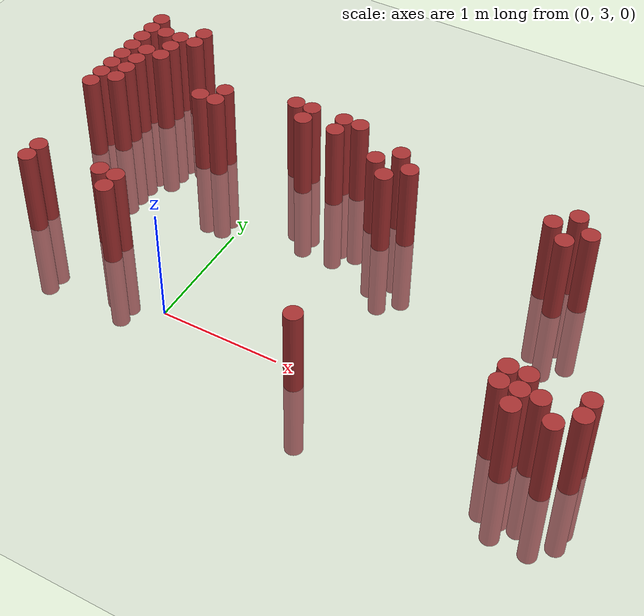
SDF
<sdf version="1.6">
 <world name="default">
  <model name="ground_plane">
   <static>1</static>
   <link name="link">
    <collision name="collision">
     <geometry><plane><normal>0 0 1</normal><size>100 100</size></plane></geometry>
     <surface><friction><ode><mu>100</mu><mu2>50</mu2></ode></friction></surface>
    </collision>
    <visual name="visual">
     <cast_shadows>0</cast_shadows>
     <geometry><plane><normal>0 0 1</normal><size>100 100</size></plane></geometry>
     <material>
      <script><uri>file://media/materials/scripts/gazebo.material</uri><name>Gazebo/Grey</name></script>
     </material>
    </visual>
   </link>
  </model>
  <model name="unit_cylinder_329">
   <static>1</static>
   <pose>-1.625000 4.375000 0.000000 0.000000 0.000000 0.000000</pose>
   <link name="link">
    <inertial>
     <mass>1</mass>
     <inertia><ixx>0.145833</ixx><ixy>0</ixy><ixz>0</ixz><iyy>0.145833</iyy><iyz>0</iyz><izz>0.125</izz></inertia>
    </inertial>
    <collision name="collision">
     <geometry><cylinder><radius>0.075000</radius><length>1.5</length></cylinder></geometry>
    </collision>
    <visual name="visual">
     <geometry><cylinder><radius>0.075000</radius><length>1.5</length></cylinder></geometry>
     <material>
      <ambient>0.648000 0.192000 0.192000 1</ambient>
      <diffuse>0.648000 0.192000 0.192000 1</diffuse>
     </material>
     <material>
      <script><name>Gazebo/Grey</name><uri>file://media/materials/scripts/gazebo.material</uri></script>
     </material>
    </visual>
   </link>
  </model>
  <model name="unit_cylinder_330">
   <static>1</static>
   <pose>-1.625000 4.525000 0.000000 0.000000 0.000000 0.000000</pose>
   <link name="link">
    <inertial>
     <mass>1</mass>
     <inertia><ixx>0.145833</ixx><ixy>0</ixy><ixz>0</ixz><iyy>0.145833</iyy><iyz>0</iyz><izz>0.125</izz></inertia>
    </inertial>
    <collision name="collision">
     <geometry><cylinder><radius>0.075000</radius><length>1.5</length></cylinder></geometry>
    </collision>
    <visual name="visual">
     <geometry><cylinder><radius>0.075000</radius><length>1.5</length></cylinder></geometry>
     <material>
      <ambient>0.648000 0.192000 0.192000 1</ambient>
      <diffuse>0.648000 0.192000 0.192000 1</diffuse>
     </material>
     <material>
      <script><name>Gazebo/Grey</name><uri>file://media/materials/scripts/gazebo.material</uri></script>
     </material>
    </visual>
   </link>
  </model>
  <model name="unit_cylinder_331">
   <static>1</static>
   <pose>-1.625000 4.675000 0.000000 0.000000 0.000000 0.000000</pose>
   <link name="link">
    <inertial>
     <mass>1</mass>
     <inertia><ixx>0.145833</ixx><ixy>0</ixy><ixz>0</ixz><iyy>0.145833</iyy><iyz>0</iyz><izz>0.125</izz></inertia>
    </inertial>
    <collision name="collision">
     <geometry><cylinder><radius>0.075000</radius><length>1.5</length></cylinder></geometry>
    </collision>
    <visual name="visual">
     <geometry><cylinder><radius>0.075000</radius><length>1.5</length></cylinder></geometry>
     <material>
      <ambient>0.648000 0.192000 0.192000 1</ambient>
      <diffuse>0.648000 0.192000 0.192000 1</diffuse>
     </material>
     <material>
      <script><name>Gazebo/Grey</name><uri>file://media/materials/scripts/gazebo.material</uri></script>
     </material>
    </visual>
   </link>
  </model>
  <model name="unit_cylinder_332">
   <static>1</static>
   <pose>-1.625000 4.825000 0.000000 0.000000 0.000000 0.000000</pose>
   <link name="link">
    <inertial>
     <mass>1</mass>
     <inertia><ixx>0.145833</ixx><ixy>0</ixy><ixz>0</ixz><iyy>0.145833</iyy><iyz>0</iyz><izz>0.125</izz></inertia>
    </inertial>
    <collision name="collision">
     <geometry><cylinder><radius>0.075000</radius><length>1.5</length></cylinder></geometry>
    </collision>
    <visual name="visual">
     <geometry><cylinder><radius>0.075000</radius><length>1.5</length></cylinder></geometry>
     <material>
      <ambient>0.648000 0.192000 0.192000 1</ambient>
      <diffuse>0.648000 0.192000 0.192000 1</diffuse>
     </material>
     <material>
      <script><name>Gazebo/Grey</name><uri>file://media/materials/scripts/gazebo.material</uri></script>
     </material>
    </visual>
   </link>
  </model>
  <model name="unit_cylinder_333">
   <static>1</static>
   <pose>-1.625000 4.975000 0.000000 0.000000 0.000000 0.000000</pose>
   <link name="link">
    <inertial>
     <mass>1</mass>
     <inertia><ixx>0.145833</ixx><ixy>0</ixy><ixz>0</ixz><iyy>0.145833</iyy><iyz>0</iyz><izz>0.125</izz></inertia>
    </inertial>
    <collision name="collision">
     <geometry><cylinder><radius>0.075000</radius><length>1.5</length></cylinder></geometry>
    </collision>
    <visual name="visual">
     <geometry><cylinder><radius>0.075000</radius><length>1.5</length></cylinder></geometry>
     <material>
      <ambient>0.648000 0.192000 0.192000 1</ambient>
      <diffuse>0.648000 0.192000 0.192000 1</diffuse>
     </material>
     <material>
      <script><name>Gazebo/Grey</name><uri>file://media/materials/scripts/gazebo.material</uri></script>
     </material>
    </visual>
   </link>
  </model>
  <model name="unit_cylinder_334">
   <static>1</static>
   <pose>-1.625000 5.125000 0.000000 0.000000 0.000000 0.000000</pose>
   <link name="link">
    <inertial>
     <mass>1</mass>
     <inertia><ixx>0.145833</ixx><ixy>0</ixy><ixz>0</ixz><iyy>0.145833</iyy><iyz>0</iyz><izz>0.125</izz></inertia>
    </inertial>
    <collision name="collision">
     <geometry><cylinder><radius>0.075000</radius><length>1.5</length></cylinder></geometry>
    </collision>
    <visual name="visual">
     <geometry><cylinder><radius>0.075000</radius><length>1.5</length></cylinder></geometry>
     <material>
      <ambient>0.648000 0.192000 0.192000 1</ambient>
      <diffuse>0.648000 0.192000 0.192000 1</diffuse>
     </material>
     <material>
      <script><name>Gazebo/Grey</name><uri>file://media/materials/scripts/gazebo.material</uri></script>
     </material>
    </visual>
   </link>
  </model>
  <model name="unit_cylinder_335">
   <static>1</static>
   <pose>-1.625000 5.275000 0.000000 0.000000 0.000000 0.000000</pose>
   <link name="link">
    <inertial>
     <mass>1</mass>
     <inertia><ixx>0.145833</ixx><ixy>0</ixy><ixz>0</ixz><iyy>0.145833</iyy><iyz>0</iyz><izz>0.125</izz></inertia>
    </inertial>
    <collision name="collision">
     <geometry><cylinder><radius>0.075000</radius><length>1.5</length></cylinder></geometry>
    </collision>
    <visual name="visual">
     <geometry><cylinder><radius>0.075000</radius><length>1.5</length></cylinder></geometry>
     <material>
      <ambient>0.648000 0.192000 0.192000 1</ambient>
      <diffuse>0.648000 0.192000 0.192000 1</diffuse>
     </material>
     <material>
      <script><name>Gazebo/Grey</name><uri>file://media/materials/scripts/gazebo.material</uri></script>
     </material>
    </visual>
   </link>
  </model>
  <model name="unit_cylinder_336">
   <static>1</static>
   <pose>-1.625000 5.425000 0.000000 0.000000 0.000000 0.000000</pose>
   <link name="link">
    <inertial>
     <mass>1</mass>
     <inertia><ixx>0.145833</ixx><ixy>0</ixy><ixz>0</ixz><iyy>0.145833</iyy><iyz>0</iyz><izz>0.125</izz></inertia>
    </inertial>
    <collision name="collision">
     <geometry><cylinder><radius>0.075000</radius><length>1.5</length></cylinder></geometry>
    </collision>
    <visual name="visual">
     <geometry><cylinder><radius>0.075000</radius><length>1.5</length></cylinder></geometry>
     <material>
      <ambient>0.648000 0.192000 0.192000 1</ambient>
      <diffuse>0.648000 0.192000 0.192000 1</diffuse>
     </material>
     <material>
      <script><name>Gazebo/Grey</name><uri>file://media/materials/scripts/gazebo.material</uri></script>
     </material>
    </visual>
   </link>
  </model>
  <model name="unit_cylinder_341">
   <static>1</static>
   <pose>-1.475000 3.325000 0.000000 0.000000 0.000000 0.000000</pose>
   <link name="link">
    <inertial>
     <mass>1</mass>
     <inertia><ixx>0.145833</ixx><ixy>0</ixy><ixz>0</ixz><iyy>0.145833</iyy><iyz>0</iyz><izz>0.125</izz></inertia>
    </inertial>
    <collision name="collision">
     <geometry><cylinder><radius>0.075000</radius><length>1.5</length></cylinder></geometry>
    </collision>
    <visual name="visual">
     <geometry><cylinder><radius>0.075000</radius><length>1.5</length></cylinder></geometry>
     <material>
      <ambient>0.648000 0.192000 0.192000 1</ambient>
      <diffuse>0.648000 0.192000 0.192000 1</diffuse>
     </material>
     <material>
      <script><name>Gazebo/Grey</name><uri>file://media/materials/scripts/gazebo.material</uri></script>
     </material>
    </visual>
   </link>
  </model>
  <model name="unit_cylinder_342">
   <static>1</static>
   <pose>-1.475000 3.475000 0.000000 0.000000 0.000000 0.000000</pose>
   <link name="link">
    <inertial>
     <mass>1</mass>
     <inertia><ixx>0.145833</ixx><ixy>0</ixy><ixz>0</ixz><iyy>0.145833</iyy><iyz>0</iyz><izz>0.125</izz></inertia>
    </inertial>
    <collision name="collision">
     <geometry><cylinder><radius>0.075000</radius><length>1.5</length></cylinder></geometry>
    </collision>
    <visual name="visual">
     <geometry><cylinder><radius>0.075000</radius><length>1.5</length></cylinder></geometry>
     <material>
      <ambient>0.648000 0.192000 0.192000 1</ambient>
      <diffuse>0.648000 0.192000 0.192000 1</diffuse>
     </material>
     <material>
      <script><name>Gazebo/Grey</name><uri>file://media/materials/scripts/gazebo.material</uri></script>
     </material>
    </visual>
   </link>
  </model>
  <model name="unit_cylinder_343">
   <static>1</static>
   <pose>-1.475000 4.525000 0.000000 0.000000 0.000000 0.000000</pose>
   <link name="link">
    <inertial>
     <mass>1</mass>
     <inertia><ixx>0.145833</ixx><ixy>0</ixy><ixz>0</ixz><iyy>0.145833</iyy><iyz>0</iyz><izz>0.125</izz></inertia>
    </inertial>
    <collision name="collision">
     <geometry><cylinder><radius>0.075000</radius><length>1.5</length></cylinder></geometry>
    </collision>
    <visual name="visual">
     <geometry><cylinder><radius>0.075000</radius><length>1.5</length></cylinder></geometry>
     <material>
      <ambient>0.648000 0.192000 0.192000 1</ambient>
      <diffuse>0.648000 0.192000 0.192000 1</diffuse>
     </material>
     <material>
      <script><name>Gazebo/Grey</name><uri>file://media/materials/scripts/gazebo.material</uri></script>
     </material>
    </visual>
   </link>
  </model>
  <model name="unit_cylinder_344">
   <static>1</static>
   <pose>-1.475000 4.675000 0.000000 0.000000 0.000000 0.000000</pose>
   <link name="link">
    <inertial>
     <mass>1</mass>
     <inertia><ixx>0.145833</ixx><ixy>0</ixy><ixz>0</ixz><iyy>0.145833</iyy><iyz>0</iyz><izz>0.125</izz></inertia>
    </inertial>
    <collision name="collision">
     <geometry><cylinder><radius>0.075000</radius><length>1.5</length></cylinder></geometry>
    </collision>
    <visual name="visual">
     <geometry><cylinder><radius>0.075000</radius><length>1.5</length></cylinder></geometry>
     <material>
      <ambient>0.648000 0.192000 0.192000 1</ambient>
      <diffuse>0.648000 0.192000 0.192000 1</diffuse>
     </material>
     <material>
      <script><name>Gazebo/Grey</name><uri>file://media/materials/scripts/gazebo.material</uri></script>
     </material>
    </visual>
   </link>
  </model>
  <model name="unit_cylinder_345">
   <static>1</static>
   <pose>-1.475000 4.825000 0.000000 0.000000 0.000000 0.000000</pose>
   <link name="link">
    <inertial>
     <mass>1</mass>
     <inertia><ixx>0.145833</ixx><ixy>0</ixy><ixz>0</ixz><iyy>0.145833</iyy><iyz>0</iyz><izz>0.125</izz></inertia>
    </inertial>
    <collision name="collision">
     <geometry><cylinder><radius>0.075000</radius><length>1.5</length></cylinder></geometry>
    </collision>
    <visual name="visual">
     <geometry><cylinder><radius>0.075000</radius><length>1.5</length></cylinder></geometry>
     <material>
      <ambient>0.648000 0.192000 0.192000 1</ambient>
      <diffuse>0.648000 0.192000 0.192000 1</diffuse>
     </material>
     <material>
      <script><name>Gazebo/Grey</name><uri>file://media/materials/scripts/gazebo.material</uri></script>
     </material>
    </visual>
   </link>
  </model>
  <model name="unit_cylinder_346">
   <static>1</static>
   <pose>-1.475000 4.975000 0.000000 0.000000 0.000000 0.000000</pose>
   <link name="link">
    <inertial>
     <mass>1</mass>
     <inertia><ixx>0.145833</ixx><ixy>0</ixy><ixz>0</ixz><iyy>0.145833</iyy><iyz>0</iyz><izz>0.125</izz></inertia>
    </inertial>
    <collision name="collision">
     <geometry><cylinder><radius>0.075000</radius><length>1.5</length></cylinder></geometry>
    </collision>
    <visual name="visual">
     <geometry><cylinder><radius>0.075000</radius><length>1.5</length></cylinder></geometry>
     <material>
      <ambient>0.648000 0.192000 0.192000 1</ambient>
      <diffuse>0.648000 0.192000 0.192000 1</diffuse>
     </material>
     <material>
      <script><name>Gazebo/Grey</name><uri>file://media/materials/scripts/gazebo.material</uri></script>
     </material>
    </visual>
   </link>
  </model>
  <model name="unit_cylinder_347">
   <static>1</static>
   <pose>-1.475000 5.275000 0.000000 0.000000 0.000000 0.000000</pose>
   <link name="link">
    <inertial>
     <mass>1</mass>
     <inertia><ixx>0.145833</ixx><ixy>0</ixy><ixz>0</ixz><iyy>0.145833</iyy><iyz>0</iyz><izz>0.125</izz></inertia>
    </inertial>
    <collision name="collision">
     <geometry><cylinder><radius>0.075000</radius><length>1.5</length></cylinder></geometry>
    </collision>
    <visual name="visual">
     <geometry><cylinder><radius>0.075000</radius><length>1.5</length></cylinder></geometry>
     <material>
      <ambient>0.648000 0.192000 0.192000 1</ambient>
      <diffuse>0.648000 0.192000 0.192000 1</diffuse>
     </material>
     <material>
      <script><name>Gazebo/Grey</name><uri>file://media/materials/scripts/gazebo.material</uri></script>
     </material>
    </visual>
   </link>
  </model>
  <model name="unit_cylinder_350">
   <static>1</static>
   <pose>-1.325000 4.975000 0.000000 0.000000 0.000000 0.000000</pose>
   <link name="link">
    <inertial>
     <mass>1</mass>
     <inertia><ixx>0.145833</ixx><ixy>0</ixy><ixz>0</ixz><iyy>0.145833</iyy><iyz>0</iyz><izz>0.125</izz></inertia>
    </inertial>
    <collision name="collision">
     <geometry><cylinder><radius>0.075000</radius><length>1.5</length></cylinder></geometry>
    </collision>
    <visual name="visual">
     <geometry><cylinder><radius>0.075000</radius><length>1.5</length></cylinder></geometry>
     <material>
      <ambient>0.648000 0.192000 0.192000 1</ambient>
      <diffuse>0.648000 0.192000 0.192000 1</diffuse>
     </material>
     <material>
      <script><name>Gazebo/Grey</name><uri>file://media/materials/scripts/gazebo.material</uri></script>
     </material>
    </visual>
   </link>
  </model>
  <model name="unit_cylinder_351">
   <static>1</static>
   <pose>-1.325000 5.125000 0.000000 0.000000 0.000000 0.000000</pose>
   <link name="link">
    <inertial>
     <mass>1</mass>
     <inertia><ixx>0.145833</ixx><ixy>0</ixy><ixz>0</ixz><iyy>0.145833</iyy><iyz>0</iyz><izz>0.125</izz></inertia>
    </inertial>
    <collision name="collision">
     <geometry><cylinder><radius>0.075000</radius><length>1.5</length></cylinder></geometry>
    </collision>
    <visual name="visual">
     <geometry><cylinder><radius>0.075000</radius><length>1.5</length></cylinder></geometry>
     <material>
      <ambient>0.648000 0.192000 0.192000 1</ambient>
      <diffuse>0.648000 0.192000 0.192000 1</diffuse>
     </material>
     <material>
      <script><name>Gazebo/Grey</name><uri>file://media/materials/scripts/gazebo.material</uri></script>
     </material>
    </visual>
   </link>
  </model>
  <model name="unit_cylinder_352">
   <static>1</static>
   <pose>-1.325000 5.275000 0.000000 0.000000 0.000000 0.000000</pose>
   <link name="link">
    <inertial>
     <mass>1</mass>
     <inertia><ixx>0.145833</ixx><ixy>0</ixy><ixz>0</ixz><iyy>0.145833</iyy><iyz>0</iyz><izz>0.125</izz></inertia>
    </inertial>
    <collision name="collision">
     <geometry><cylinder><radius>0.075000</radius><length>1.5</length></cylinder></geometry>
    </collision>
    <visual name="visual">
     <geometry><cylinder><radius>0.075000</radius><length>1.5</length></cylinder></geometry>
     <material>
      <ambient>0.648000 0.192000 0.192000 1</ambient>
      <diffuse>0.648000 0.192000 0.192000 1</diffuse>
     </material>
     <material>
      <script><name>Gazebo/Grey</name><uri>file://media/materials/scripts/gazebo.material</uri></script>
     </material>
    </visual>
   </link>
  </model>
  <model name="unit_cylinder_355">
   <static>1</static>
   <pose>-1.175000 5.275000 0.000000 0.000000 0.000000 0.000000</pose>
   <link name="link">
    <inertial>
     <mass>1</mass>
     <inertia><ixx>0.145833</ixx><ixy>0</ixy><ixz>0</ixz><iyy>0.145833</iyy><iyz>0</iyz><izz>0.125</izz></inertia>
    </inertial>
    <collision name="collision">
     <geometry><cylinder><radius>0.075000</radius><length>1.5</length></cylinder></geometry>
    </collision>
    <visual name="visual">
     <geometry><cylinder><radius>0.075000</radius><length>1.5</length></cylinder></geometry>
     <material>
      <ambient>0.648000 0.192000 0.192000 1</ambient>
      <diffuse>0.648000 0.192000 0.192000 1</diffuse>
     </material>
     <material>
      <script><name>Gazebo/Grey</name><uri>file://media/materials/scripts/gazebo.material</uri></script>
     </material>
    </visual>
   </link>
  </model>
  <model name="unit_cylinder_356">
   <static>1</static>
   <pose>-1.175000 5.425000 0.000000 0.000000 0.000000 0.000000</pose>
   <link name="link">
    <inertial>
     <mass>1</mass>
     <inertia><ixx>0.145833</ixx><ixy>0</ixy><ixz>0</ixz><iyy>0.145833</iyy><iyz>0</iyz><izz>0.125</izz></inertia>
    </inertial>
    <collision name="collision">
     <geometry><cylinder><radius>0.075000</radius><length>1.5</length></cylinder></geometry>
    </collision>
    <visual name="visual">
     <geometry><cylinder><radius>0.075000</radius><length>1.5</length></cylinder></geometry>
     <material>
      <ambient>0.648000 0.192000 0.192000 1</ambient>
      <diffuse>0.648000 0.192000 0.192000 1</diffuse>
     </material>
     <material>
      <script><name>Gazebo/Grey</name><uri>file://media/materials/scripts/gazebo.material</uri></script>
     </material>
    </visual>
   </link>
  </model>
  <model name="unit_cylinder_362">
   <static>1</static>
   <pose>-0.875000 3.475000 0.000000 0.000000 0.000000 0.000000</pose>
   <link name="link">
    <inertial>
     <mass>1</mass>
     <inertia><ixx>0.145833</ixx><ixy>0</ixy><ixz>0</ixz><iyy>0.145833</iyy><iyz>0</iyz><izz>0.125</izz></inertia>
    </inertial>
    <collision name="collision">
     <geometry><cylinder><radius>0.075000</radius><length>1.5</length></cylinder></geometry>
    </collision>
    <visual name="visual">
     <geometry><cylinder><radius>0.075000</radius><length>1.5</length></cylinder></geometry>
     <material>
      <ambient>0.648000 0.192000 0.192000 1</ambient>
      <diffuse>0.648000 0.192000 0.192000 1</diffuse>
     </material>
     <material>
      <script><name>Gazebo/Grey</name><uri>file://media/materials/scripts/gazebo.material</uri></script>
     </material>
    </visual>
   </link>
  </model>
  <model name="unit_cylinder_366">
   <static>1</static>
   <pose>-0.725000 3.325000 0.000000 0.000000 0.000000 0.000000</pose>
   <link name="link">
    <inertial>
     <mass>1</mass>
     <inertia><ixx>0.145833</ixx><ixy>0</ixy><ixz>0</ixz><iyy>0.145833</iyy><iyz>0</iyz><izz>0.125</izz></inertia>
    </inertial>
    <collision name="collision">
     <geometry><cylinder><radius>0.075000</radius><length>1.5</length></cylinder></geometry>
    </collision>
    <visual name="visual">
     <geometry><cylinder><radius>0.075000</radius><length>1.5</length></cylinder></geometry>
     <material>
      <ambient>0.648000 0.192000 0.192000 1</ambient>
      <diffuse>0.648000 0.192000 0.192000 1</diffuse>
     </material>
     <material>
      <script><name>Gazebo/Grey</name><uri>file://media/materials/scripts/gazebo.material</uri></script>
     </material>
    </visual>
   </link>
  </model>
  <model name="unit_cylinder_367">
   <static>1</static>
   <pose>-0.725000 3.475000 0.000000 0.000000 0.000000 0.000000</pose>
   <link name="link">
    <inertial>
     <mass>1</mass>
     <inertia><ixx>0.145833</ixx><ixy>0</ixy><ixz>0</ixz><iyy>0.145833</iyy><iyz>0</iyz><izz>0.125</izz></inertia>
    </inertial>
    <collision name="collision">
     <geometry><cylinder><radius>0.075000</radius><length>1.5</length></cylinder></geometry>
    </collision>
    <visual name="visual">
     <geometry><cylinder><radius>0.075000</radius><length>1.5</length></cylinder></geometry>
     <material>
      <ambient>0.648000 0.192000 0.192000 1</ambient>
      <diffuse>0.648000 0.192000 0.192000 1</diffuse>
     </material>
     <material>
      <script><name>Gazebo/Grey</name><uri>file://media/materials/scripts/gazebo.material</uri></script>
     </material>
    </visual>
   </link>
  </model>
  <model name="unit_cylinder_368">
   <static>1</static>
   <pose>-0.725000 4.675000 0.000000 0.000000 0.000000 0.000000</pose>
   <link name="link">
    <inertial>
     <mass>1</mass>
     <inertia><ixx>0.145833</ixx><ixy>0</ixy><ixz>0</ixz><iyy>0.145833</iyy><iyz>0</iyz><izz>0.125</izz></inertia>
    </inertial>
    <collision name="collision">
     <geometry><cylinder><radius>0.075000</radius><length>1.5</length></cylinder></geometry>
    </collision>
    <visual name="visual">
     <geometry><cylinder><radius>0.075000</radius><length>1.5</length></cylinder></geometry>
     <material>
      <ambient>0.648000 0.192000 0.192000 1</ambient>
      <diffuse>0.648000 0.192000 0.192000 1</diffuse>
     </material>
     <material>
      <script><name>Gazebo/Grey</name><uri>file://media/materials/scripts/gazebo.material</uri></script>
     </material>
    </visual>
   </link>
  </model>
  <model name="unit_cylinder_371">
   <static>1</static>
   <pose>-0.575000 4.675000 0.000000 0.000000 0.000000 0.000000</pose>
   <link name="link">
    <inertial>
     <mass>1</mass>
     <inertia><ixx>0.145833</ixx><ixy>0</ixy><ixz>0</ixz><iyy>0.145833</iyy><iyz>0</iyz><izz>0.125</izz></inertia>
    </inertial>
    <collision name="collision">
     <geometry><cylinder><radius>0.075000</radius><length>1.5</length></cylinder></geometry>
    </collision>
    <visual name="visual">
     <geometry><cylinder><radius>0.075000</radius><length>1.5</length></cylinder></geometry>
     <material>
      <ambient>0.648000 0.192000 0.192000 1</ambient>
      <diffuse>0.648000 0.192000 0.192000 1</diffuse>
     </material>
     <material>
      <script><name>Gazebo/Grey</name><uri>file://media/materials/scripts/gazebo.material</uri></script>
     </material>
    </visual>
   </link>
  </model>
  <model name="unit_cylinder_372">
   <static>1</static>
   <pose>-0.575000 4.825000 0.000000 0.000000 0.000000 0.000000</pose>
   <link name="link">
    <inertial>
     <mass>1</mass>
     <inertia><ixx>0.145833</ixx><ixy>0</ixy><ixz>0</ixz><iyy>0.145833</iyy><iyz>0</iyz><izz>0.125</izz></inertia>
    </inertial>
    <collision name="collision">
     <geometry><cylinder><radius>0.075000</radius><length>1.5</length></cylinder></geometry>
    </collision>
    <visual name="visual">
     <geometry><cylinder><radius>0.075000</radius><length>1.5</length></cylinder></geometry>
     <material>
      <ambient>0.648000 0.192000 0.192000 1</ambient>
      <diffuse>0.648000 0.192000 0.192000 1</diffuse>
     </material>
     <material>
      <script><name>Gazebo/Grey</name><uri>file://media/materials/scripts/gazebo.material</uri></script>
     </material>
    </visual>
   </link>
  </model>
  <model name="unit_cylinder_377">
   <static>1</static>
   <pose>0.025000 4.975000 0.000000 0.000000 0.000000 0.000000</pose>
   <link name="link">
    <inertial>
     <mass>1</mass>
     <inertia><ixx>0.145833</ixx><ixy>0</ixy><ixz>0</ixz><iyy>0.145833</iyy><iyz>0</iyz><izz>0.125</izz></inertia>
    </inertial>
    <collision name="collision">
     <geometry><cylinder><radius>0.075000</radius><length>1.5</length></cylinder></geometry>
    </collision>
    <visual name="visual">
     <geometry><cylinder><radius>0.075000</radius><length>1.5</length></cylinder></geometry>
     <material>
      <ambient>0.648000 0.192000 0.192000 1</ambient>
      <diffuse>0.648000 0.192000 0.192000 1</diffuse>
     </material>
     <material>
      <script><name>Gazebo/Grey</name><uri>file://media/materials/scripts/gazebo.material</uri></script>
     </material>
    </visual>
   </link>
  </model>
  <model name="unit_cylinder_378">
   <static>1</static>
   <pose>0.175000 4.825000 0.000000 0.000000 0.000000 0.000000</pose>
   <link name="link">
    <inertial>
     <mass>1</mass>
     <inertia><ixx>0.145833</ixx><ixy>0</ixy><ixz>0</ixz><iyy>0.145833</iyy><iyz>0</iyz><izz>0.125</izz></inertia>
    </inertial>
    <collision name="collision">
     <geometry><cylinder><radius>0.075000</radius><length>1.5</length></cylinder></geometry>
    </collision>
    <visual name="visual">
     <geometry><cylinder><radius>0.075000</radius><length>1.5</length></cylinder></geometry>
     <material>
      <ambient>0.648000 0.192000 0.192000 1</ambient>
      <diffuse>0.648000 0.192000 0.192000 1</diffuse>
     </material>
     <material>
      <script><name>Gazebo/Grey</name><uri>file://media/materials/scripts/gazebo.material</uri></script>
     </material>
    </visual>
   </link>
  </model>
  <model name="unit_cylinder_379">
   <static>1</static>
   <pose>0.175000 4.975000 0.000000 0.000000 0.000000 0.000000</pose>
   <link name="link">
    <inertial>
     <mass>1</mass>
     <inertia><ixx>0.145833</ixx><ixy>0</ixy><ixz>0</ixz><iyy>0.145833</iyy><iyz>0</iyz><izz>0.125</izz></inertia>
    </inertial>
    <collision name="collision">
     <geometry><cylinder><radius>0.075000</radius><length>1.5</length></cylinder></geometry>
    </collision>
    <visual name="visual">
     <geometry><cylinder><radius>0.075000</radius><length>1.5</length></cylinder></geometry>
     <material>
      <ambient>0.648000 0.192000 0.192000 1</ambient>
      <diffuse>0.648000 0.192000 0.192000 1</diffuse>
     </material>
     <material>
      <script><name>Gazebo/Grey</name><uri>file://media/materials/scripts/gazebo.material</uri></script>
     </material>
    </visual>
   </link>
  </model>
  <model name="unit_cylinder_383">
   <static>1</static>
   <pose>0.475000 4.825000 0.000000 0.000000 0.000000 0.000000</pose>
   <link name="link">
    <inertial>
     <mass>1</mass>
     <inertia><ixx>0.145833</ixx><ixy>0</ixy><ixz>0</ixz><iyy>0.145833</iyy><iyz>0</iyz><izz>0.125</izz></inertia>
    </inertial>
    <collision name="collision">
     <geometry><cylinder><radius>0.075000</radius><length>1.5</length></cylinder></geometry>
    </collision>
    <visual name="visual">
     <geometry><cylinder><radius>0.075000</radius><length>1.5</length></cylinder></geometry>
     <material>
      <ambient>0.648000 0.192000 0.192000 1</ambient>
      <diffuse>0.648000 0.192000 0.192000 1</diffuse>
     </material>
     <material>
      <script><name>Gazebo/Grey</name><uri>file://media/materials/scripts/gazebo.material</uri></script>
     </material>
    </visual>
   </link>
  </model>
  <model name="unit_cylinder_384">
   <static>1</static>
   <pose>0.475000 4.975000 0.000000 0.000000 0.000000 0.000000</pose>
   <link name="link">
    <inertial>
     <mass>1</mass>
     <inertia><ixx>0.145833</ixx><ixy>0</ixy><ixz>0</ixz><iyy>0.145833</iyy><iyz>0</iyz><izz>0.125</izz></inertia>
    </inertial>
    <collision name="collision">
     <geometry><cylinder><radius>0.075000</radius><length>1.5</length></cylinder></geometry>
    </collision>
    <visual name="visual">
     <geometry><cylinder><radius>0.075000</radius><length>1.5</length></cylinder></geometry>
     <material>
      <ambient>0.648000 0.192000 0.192000 1</ambient>
      <diffuse>0.648000 0.192000 0.192000 1</diffuse>
     </material>
     <material>
      <script><name>Gazebo/Grey</name><uri>file://media/materials/scripts/gazebo.material</uri></script>
     </material>
    </visual>
   </link>
  </model>
  <model name="unit_cylinder_385">
   <static>1</static>
   <pose>0.625000 4.975000 0.000000 0.000000 0.000000 0.000000</pose>
   <link name="link">
    <inertial>
     <mass>1</mass>
     <inertia><ixx>0.145833</ixx><ixy>0</ixy><ixz>0</ixz><iyy>0.145833</iyy><iyz>0</iyz><izz>0.125</izz></inertia>
    </inertial>
    <collision name="collision">
     <geometry><cylinder><radius>0.075000</radius><length>1.5</length></cylinder></geometry>
    </collision>
    <visual name="visual">
     <geometry><cylinder><radius>0.075000</radius><length>1.5</length></cylinder></geometry>
     <material>
      <ambient>0.648000 0.192000 0.192000 1</ambient>
      <diffuse>0.648000 0.192000 0.192000 1</diffuse>
     </material>
     <material>
      <script><name>Gazebo/Grey</name><uri>file://media/materials/scripts/gazebo.material</uri></script>
     </material>
    </visual>
   </link>
  </model>
  <model name="unit_cylinder_391">
   <static>1</static>
   <pose>0.925000 4.675000 0.000000 0.000000 0.000000 0.000000</pose>
   <link name="link">
    <inertial>
     <mass>1</mass>
     <inertia><ixx>0.145833</ixx><ixy>0</ixy><ixz>0</ixz><iyy>0.145833</iyy><iyz>0</iyz><izz>0.125</izz></inertia>
    </inertial>
    <collision name="collision">
     <geometry><cylinder><radius>0.075000</radius><length>1.5</length></cylinder></geometry>
    </collision>
    <visual name="visual">
     <geometry><cylinder><radius>0.075000</radius><length>1.5</length></cylinder></geometry>
     <material>
      <ambient>0.648000 0.192000 0.192000 1</ambient>
      <diffuse>0.648000 0.192000 0.192000 1</diffuse>
     </material>
     <material>
      <script><name>Gazebo/Grey</name><uri>file://media/materials/scripts/gazebo.material</uri></script>
     </material>
    </visual>
   </link>
  </model>
  <model name="unit_cylinder_399">
   <static>1</static>
   <pose>1.075000 4.525000 0.000000 0.000000 0.000000 0.000000</pose>
   <link name="link">
    <inertial>
     <mass>1</mass>
     <inertia><ixx>0.145833</ixx><ixy>0</ixy><ixz>0</ixz><iyy>0.145833</iyy><iyz>0</iyz><izz>0.125</izz></inertia>
    </inertial>
    <collision name="collision">
     <geometry><cylinder><radius>0.075000</radius><length>1.5</length></cylinder></geometry>
    </collision>
    <visual name="visual">
     <geometry><cylinder><radius>0.075000</radius><length>1.5</length></cylinder></geometry>
     <material>
      <ambient>0.648000 0.192000 0.192000 1</ambient>
      <diffuse>0.648000 0.192000 0.192000 1</diffuse>
     </material>
     <material>
      <script><name>Gazebo/Grey</name><uri>file://media/materials/scripts/gazebo.material</uri></script>
     </material>
    </visual>
   </link>
  </model>
  <model name="unit_cylinder_400">
   <static>1</static>
   <pose>1.075000 4.825000 0.000000 0.000000 0.000000 0.000000</pose>
   <link name="link">
    <inertial>
     <mass>1</mass>
     <inertia><ixx>0.145833</ixx><ixy>0</ixy><ixz>0</ixz><iyy>0.145833</iyy><iyz>0</iyz><izz>0.125</izz></inertia>
    </inertial>
    <collision name="collision">
     <geometry><cylinder><radius>0.075000</radius><length>1.5</length></cylinder></geometry>
    </collision>
    <visual name="visual">
     <geometry><cylinder><radius>0.075000</radius><length>1.5</length></cylinder></geometry>
     <material>
      <ambient>0.648000 0.192000 0.192000 1</ambient>
      <diffuse>0.648000 0.192000 0.192000 1</diffuse>
     </material>
     <material>
      <script><name>Gazebo/Grey</name><uri>file://media/materials/scripts/gazebo.material</uri></script>
     </material>
    </visual>
   </link>
  </model>
  <model name="unit_cylinder_405">
   <static>1</static>
   <pose>1.225000 2.875000 0.000000 0.000000 0.000000 0.000000</pose>
   <link name="link">
    <inertial>
     <mass>1</mass>
     <inertia><ixx>0.145833</ixx><ixy>0</ixy><ixz>0</ixz><iyy>0.145833</iyy><iyz>0</iyz><izz>0.125</izz></inertia>
    </inertial>
    <collision name="collision">
     <geometry><cylinder><radius>0.075000</radius><length>1.5</length></cylinder></geometry>
    </collision>
    <visual name="visual">
     <geometry><cylinder><radius>0.075000</radius><length>1.5</length></cylinder></geometry>
     <material>
      <ambient>0.648000 0.192000 0.192000 1</ambient>
      <diffuse>0.648000 0.192000 0.192000 1</diffuse>
     </material>
     <material>
      <script><name>Gazebo/Grey</name><uri>file://media/materials/scripts/gazebo.material</uri></script>
     </material>
    </visual>
   </link>
  </model>
  <model name="unit_cylinder_406">
   <static>1</static>
   <pose>1.225000 4.675000 0.000000 0.000000 0.000000 0.000000</pose>
   <link name="link">
    <inertial>
     <mass>1</mass>
     <inertia><ixx>0.145833</ixx><ixy>0</ixy><ixz>0</ixz><iyy>0.145833</iyy><iyz>0</iyz><izz>0.125</izz></inertia>
    </inertial>
    <collision name="collision">
     <geometry><cylinder><radius>0.075000</radius><length>1.5</length></cylinder></geometry>
    </collision>
    <visual name="visual">
     <geometry><cylinder><radius>0.075000</radius><length>1.5</length></cylinder></geometry>
     <material>
      <ambient>0.648000 0.192000 0.192000 1</ambient>
      <diffuse>0.648000 0.192000 0.192000 1</diffuse>
     </material>
     <material>
      <script><name>Gazebo/Grey</name><uri>file://media/materials/scripts/gazebo.material</uri></script>
     </material>
    </visual>
   </link>
  </model>
  <model name="unit_cylinder_412">
   <static>1</static>
   <pose>2.425000 4.675000 0.000000 0.000000 0.000000 0.000000</pose>
   <link name="link">
    <inertial>
     <mass>1</mass>
     <inertia><ixx>0.145833</ixx><ixy>0</ixy><ixz>0</ixz><iyy>0.145833</iyy><iyz>0</iyz><izz>0.125</izz></inertia>
    </inertial>
    <collision name="collision">
     <geometry><cylinder><radius>0.075000</radius><length>1.5</length></cylinder></geometry>
    </collision>
    <visual name="visual">
     <geometry><cylinder><radius>0.075000</radius><length>1.5</length></cylinder></geometry>
     <material>
      <ambient>0.648000 0.192000 0.192000 1</ambient>
      <diffuse>0.648000 0.192000 0.192000 1</diffuse>
     </material>
     <material>
      <script><name>Gazebo/Grey</name><uri>file://media/materials/scripts/gazebo.material</uri></script>
     </material>
    </visual>
   </link>
  </model>
  <model name="unit_cylinder_415">
   <static>1</static>
   <pose>2.575000 4.525000 0.000000 0.000000 0.000000 0.000000</pose>
   <link name="link">
    <inertial>
     <mass>1</mass>
     <inertia><ixx>0.145833</ixx><ixy>0</ixy><ixz>0</ixz><iyy>0.145833</iyy><iyz>0</iyz><izz>0.125</izz></inertia>
    </inertial>
    <collision name="collision">
     <geometry><cylinder><radius>0.075000</radius><length>1.5</length></cylinder></geometry>
    </collision>
    <visual name="visual">
     <geometry><cylinder><radius>0.075000</radius><length>1.5</length></cylinder></geometry>
     <material>
      <ambient>0.648000 0.192000 0.192000 1</ambient>
      <diffuse>0.648000 0.192000 0.192000 1</diffuse>
     </material>
     <material>
      <script><name>Gazebo/Grey</name><uri>file://media/materials/scripts/gazebo.material</uri></script>
     </material>
    </visual>
   </link>
  </model>
  <model name="unit_cylinder_416">
   <static>1</static>
   <pose>2.575000 4.825000 0.000000 0.000000 0.000000 0.000000</pose>
   <link name="link">
    <inertial>
     <mass>1</mass>
     <inertia><ixx>0.145833</ixx><ixy>0</ixy><ixz>0</ixz><iyy>0.145833</iyy><iyz>0</iyz><izz>0.125</izz></inertia>
    </inertial>
    <collision name="collision">
     <geometry><cylinder><radius>0.075000</radius><length>1.5</length></cylinder></geometry>
    </collision>
    <visual name="visual">
     <geometry><cylinder><radius>0.075000</radius><length>1.5</length></cylinder></geometry>
     <material>
      <ambient>0.648000 0.192000 0.192000 1</ambient>
      <diffuse>0.648000 0.192000 0.192000 1</diffuse>
     </material>
     <material>
      <script><name>Gazebo/Grey</name><uri>file://media/materials/scripts/gazebo.material</uri></script>
     </material>
    </visual>
   </link>
  </model>
  <model name="unit_cylinder_417">
   <static>1</static>
   <pose>2.725000 3.025000 0.000000 0.000000 0.000000 0.000000</pose>
   <link name="link">
    <inertial>
     <mass>1</mass>
     <inertia><ixx>0.145833</ixx><ixy>0</ixy><ixz>0</ixz><iyy>0.145833</iyy><iyz>0</iyz><izz>0.125</izz></inertia>
    </inertial>
    <collision name="collision">
     <geometry><cylinder><radius>0.075000</radius><length>1.5</length></cylinder></geometry>
    </collision>
    <visual name="visual">
     <geometry><cylinder><radius>0.075000</radius><length>1.5</length></cylinder></geometry>
     <material>
      <ambient>0.648000 0.192000 0.192000 1</ambient>
      <diffuse>0.648000 0.192000 0.192000 1</diffuse>
     </material>
     <material>
      <script><name>Gazebo/Grey</name><uri>file://media/materials/scripts/gazebo.material</uri></script>
     </material>
    </visual>
   </link>
  </model>
  <model name="unit_cylinder_418">
   <static>1</static>
   <pose>2.725000 3.175000 0.000000 0.000000 0.000000 0.000000</pose>
   <link name="link">
    <inertial>
     <mass>1</mass>
     <inertia><ixx>0.145833</ixx><ixy>0</ixy><ixz>0</ixz><iyy>0.145833</iyy><iyz>0</iyz><izz>0.125</izz></inertia>
    </inertial>
    <collision name="collision">
     <geometry><cylinder><radius>0.075000</radius><length>1.5</length></cylinder></geometry>
    </collision>
    <visual name="visual">
     <geometry><cylinder><radius>0.075000</radius><length>1.5</length></cylinder></geometry>
     <material>
      <ambient>0.648000 0.192000 0.192000 1</ambient>
      <diffuse>0.648000 0.192000 0.192000 1</diffuse>
     </material>
     <material>
      <script><name>Gazebo/Grey</name><uri>file://media/materials/scripts/gazebo.material</uri></script>
     </material>
    </visual>
   </link>
  </model>
  <model name="unit_cylinder_419">
   <static>1</static>
   <pose>2.725000 4.675000 0.000000 0.000000 0.000000 0.000000</pose>
   <link name="link">
    <inertial>
     <mass>1</mass>
     <inertia><ixx>0.145833</ixx><ixy>0</ixy><ixz>0</ixz><iyy>0.145833</iyy><iyz>0</iyz><izz>0.125</izz></inertia>
    </inertial>
    <collision name="collision">
     <geometry><cylinder><radius>0.075000</radius><length>1.5</length></cylinder></geometry>
    </collision>
    <visual name="visual">
     <geometry><cylinder><radius>0.075000</radius><length>1.5</length></cylinder></geometry>
     <material>
      <ambient>0.648000 0.192000 0.192000 1</ambient>
      <diffuse>0.648000 0.192000 0.192000 1</diffuse>
     </material>
     <material>
      <script><name>Gazebo/Grey</name><uri>file://media/materials/scripts/gazebo.material</uri></script>
     </material>
    </visual>
   </link>
  </model>
  <model name="unit_cylinder_420">
   <static>1</static>
   <pose>2.875000 2.875000 0.000000 0.000000 0.000000 0.000000</pose>
   <link name="link">
    <inertial>
     <mass>1</mass>
     <inertia><ixx>0.145833</ixx><ixy>0</ixy><ixz>0</ixz><iyy>0.145833</iyy><iyz>0</iyz><izz>0.125</izz></inertia>
    </inertial>
    <collision name="collision">
     <geometry><cylinder><radius>0.075000</radius><length>1.5</length></cylinder></geometry>
    </collision>
    <visual name="visual">
     <geometry><cylinder><radius>0.075000</radius><length>1.5</length></cylinder></geometry>
     <material>
      <ambient>0.648000 0.192000 0.192000 1</ambient>
      <diffuse>0.648000 0.192000 0.192000 1</diffuse>
     </material>
     <material>
      <script><name>Gazebo/Grey</name><uri>file://media/materials/scripts/gazebo.material</uri></script>
     </material>
    </visual>
   </link>
  </model>
  <model name="unit_cylinder_421">
   <static>1</static>
   <pose>2.875000 3.025000 0.000000 0.000000 0.000000 0.000000</pose>
   <link name="link">
    <inertial>
     <mass>1</mass>
     <inertia><ixx>0.145833</ixx><ixy>0</ixy><ixz>0</ixz><iyy>0.145833</iyy><iyz>0</iyz><izz>0.125</izz></inertia>
    </inertial>
    <collision name="collision">
     <geometry><cylinder><radius>0.075000</radius><length>1.5</length></cylinder></geometry>
    </collision>
    <visual name="visual">
     <geometry><cylinder><radius>0.075000</radius><length>1.5</length></cylinder></geometry>
     <material>
      <ambient>0.648000 0.192000 0.192000 1</ambient>
      <diffuse>0.648000 0.192000 0.192000 1</diffuse>
     </material>
     <material>
      <script><name>Gazebo/Grey</name><uri>file://media/materials/scripts/gazebo.material</uri></script>
     </material>
    </visual>
   </link>
  </model>
  <model name="unit_cylinder_422">
   <static>1</static>
   <pose>2.875000 3.175000 0.000000 0.000000 0.000000 0.000000</pose>
   <link name="link">
    <inertial>
     <mass>1</mass>
     <inertia><ixx>0.145833</ixx><ixy>0</ixy><ixz>0</ixz><iyy>0.145833</iyy><iyz>0</iyz><izz>0.125</izz></inertia>
    </inertial>
    <collision name="collision">
     <geometry><cylinder><radius>0.075000</radius><length>1.5</length></cylinder></geometry>
    </collision>
    <visual name="visual">
     <geometry><cylinder><radius>0.075000</radius><length>1.5</length></cylinder></geometry>
     <material>
      <ambient>0.648000 0.192000 0.192000 1</ambient>
      <diffuse>0.648000 0.192000 0.192000 1</diffuse>
     </material>
     <material>
      <script><name>Gazebo/Grey</name><uri>file://media/materials/scripts/gazebo.material</uri></script>
     </material>
    </visual>
   </link>
  </model>
  <model name="unit_cylinder_426">
   <static>1</static>
   <pose>3.025000 3.025000 0.000000 0.000000 0.000000 0.000000</pose>
   <link name="link">
    <inertial>
     <mass>1</mass>
     <inertia><ixx>0.145833</ixx><ixy>0</ixy><ixz>0</ixz><iyy>0.145833</iyy><iyz>0</iyz><izz>0.125</izz></inertia>
    </inertial>
    <collision name="collision">
     <geometry><cylinder><radius>0.075000</radius><length>1.5</length></cylinder></geometry>
    </collision>
    <visual name="visual">
     <geometry><cylinder><radius>0.075000</radius><length>1.5</length></cylinder></geometry>
     <material>
      <ambient>0.648000 0.192000 0.192000 1</ambient>
      <diffuse>0.648000 0.192000 0.192000 1</diffuse>
     </material>
     <material>
      <script><name>Gazebo/Grey</name><uri>file://media/materials/scripts/gazebo.material</uri></script>
     </material>
    </visual>
   </link>
  </model>
  <model name="unit_cylinder_430">
   <static>1</static>
   <pose>3.175000 2.875000 0.000000 0.000000 0.000000 0.000000</pose>
   <link name="link">
    <inertial>
     <mass>1</mass>
     <inertia><ixx>0.145833</ixx><ixy>0</ixy><ixz>0</ixz><iyy>0.145833</iyy><iyz>0</iyz><izz>0.125</izz></inertia>
    </inertial>
    <collision name="collision">
     <geometry><cylinder><radius>0.075000</radius><length>1.5</length></cylinder></geometry>
    </collision>
    <visual name="visual">
     <geometry><cylinder><radius>0.075000</radius><length>1.5</length></cylinder></geometry>
     <material>
      <ambient>0.648000 0.192000 0.192000 1</ambient>
      <diffuse>0.648000 0.192000 0.192000 1</diffuse>
     </material>
     <material>
      <script><name>Gazebo/Grey</name><uri>file://media/materials/scripts/gazebo.material</uri></script>
     </material>
    </visual>
   </link>
  </model>
  <model name="unit_cylinder_432">
   <static>1</static>
   <pose>3.325000 3.025000 0.000000 0.000000 0.000000 0.000000</pose>
   <link name="link">
    <inertial>
     <mass>1</mass>
     <inertia><ixx>0.145833</ixx><ixy>0</ixy><ixz>0</ixz><iyy>0.145833</iyy><iyz>0</iyz><izz>0.125</izz></inertia>
    </inertial>
    <collision name="collision">
     <geometry><cylinder><radius>0.075000</radius><length>1.5</length></cylinder></geometry>
    </collision>
    <visual name="visual">
     <geometry><cylinder><radius>0.075000</radius><length>1.5</length></cylinder></geometry>
     <material>
      <ambient>0.648000 0.192000 0.192000 1</ambient>
      <diffuse>0.648000 0.192000 0.192000 1</diffuse>
     </material>
     <material>
      <script><name>Gazebo/Grey</name><uri>file://media/materials/scripts/gazebo.material</uri></script>
     </material>
    </visual>
   </link>
  </model>
  <model name="unit_cylinder_433">
   <static>1</static>
   <pose>3.325000 3.175000 0.000000 0.000000 0.000000 0.000000</pose>
   <link name="link">
    <inertial>
     <mass>1</mass>
     <inertia><ixx>0.145833</ixx><ixy>0</ixy><ixz>0</ixz><iyy>0.145833</iyy><iyz>0</iyz><izz>0.125</izz></inertia>
    </inertial>
    <collision name="collision">
     <geometry><cylinder><radius>0.075000</radius><length>1.5</length></cylinder></geometry>
    </collision>
    <visual name="visual">
     <geometry><cylinder><radius>0.075000</radius><length>1.5</length></cylinder></geometry>
     <material>
      <ambient>0.648000 0.192000 0.192000 1</ambient>
      <diffuse>0.648000 0.192000 0.192000 1</diffuse>
     </material>
     <material>
      <script><name>Gazebo/Grey</name><uri>file://media/materials/scripts/gazebo.material</uri></script>
     </material>
    </visual>
   </link>
  </model>
 </world>
</sdf>
